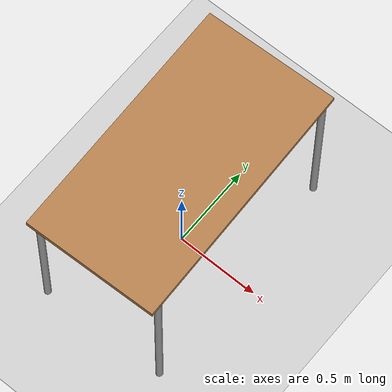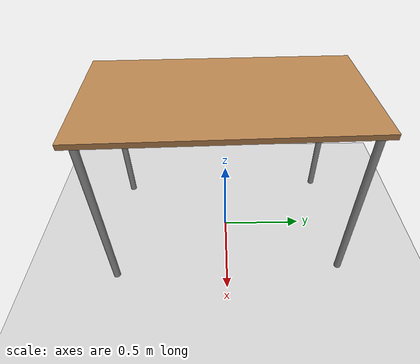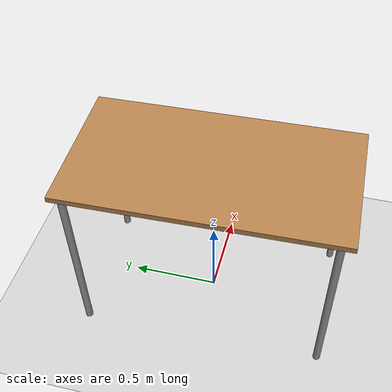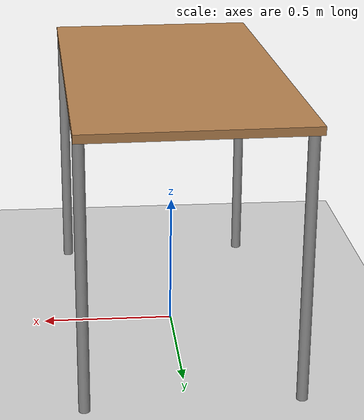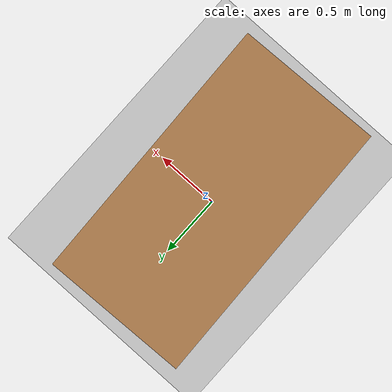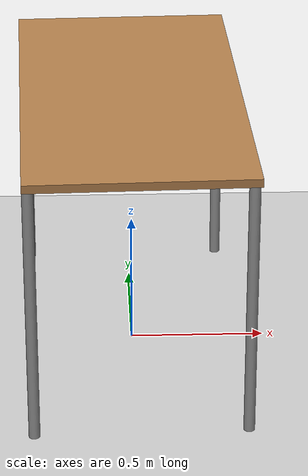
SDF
<sdf version="1.4">
  <world name="papras_system">
    <!-- A global light source -->
    <include>
      <uri>model://sun</uri>
    </include>

    <!-- A ground plane -->
    <include>
      <uri>model://ground_plane</uri>
    </include>

    <!-- A table -->
    <include>
      <uri>model://table</uri>
      <name>table</name>
      <pose>0 0 0 0 0 1.6</pose>
    </include>

    <physics type="ode">
      <real_time_update_rate>1000.0</real_time_update_rate>
      <max_step_size>0.001</max_step_size>
      <real_time_factor>1</real_time_factor>
      <ode>
        <solver>
          <type>quick</type>
          <iters>150</iters>
          <precon_iters>0</precon_iters>
          <sor>1.400000</sor>
          <use_dynamic_moi_rescaling>1</use_dynamic_moi_rescaling>
        </solver>
        <constraints>
          <cfm>0.00001</cfm>
          <erp>0.2</erp>
          <contact_max_correcting_vel>2000.000000</contact_max_correcting_vel>
          <contact_surface_layer>0.01000</contact_surface_layer>
        </constraints>
      </ode>
    </physics>

    <scene>
      <ambient>0.4 0.4 0.4 1</ambient>
      <background>0.7 0.7 0.7 1</background>
      <shadows>true</shadows>
    </scene>

    <gui fullscreen='0'>
      <camera name='user_camera'>
        <pose> 2.0 -2.0 1.2 0.0 0.275643 2.356190 </pose>
        <view_controller>orbit</view_controller>
      </camera>
    </gui>

  </world>
</sdf>

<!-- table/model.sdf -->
<sdf version="1.5">
  <model name="table">
    <static>true</static>
    <link name="link">
      <collision name="surface">
        <pose>0 0 1.0 0 0 0</pose>
        <geometry>
          <box>
            <size>1.5 0.8 0.03</size>
          </box>
        </geometry>
        <surface>
          <friction>
            <ode>
              <mu>0.6</mu>
              <mu2>0.6</mu2>
            </ode>
          </friction>
        </surface>
      </collision>
      <visual name="visual1">
        <pose>0 0 1.0 0 0 0</pose>
        <geometry>
          <box>
            <size>1.5 0.8 0.03</size>
          </box>
        </geometry>
        <material>
          <script>
            <uri>model://media/materials/scripts/gazebo.material</uri>
            <name>Gazebo/Wood</name>
          </script>
        </material>
      </visual>
      <collision name="front_left_leg">
        <pose>0.68 0.38 0.5 0 0 0</pose>
        <geometry>
          <cylinder>
            <radius>0.02</radius>
            <length>1.0</length>
          </cylinder>
        </geometry>
      </collision>
      <visual name="front_left_leg">
        <pose>0.68 0.38 0.5 0 0 0</pose>
        <geometry>
          <cylinder>
            <radius>0.02</radius>
            <length>1.0</length>
          </cylinder>
        </geometry>
        <material>
          <script>
            <uri>model://media/materials/scripts/gazebo.material</uri>
            <name>Gazebo/Grey</name>
          </script>
        </material>
      </visual>
      <collision name="front_right_leg">
        <pose>0.68 -0.38 0.5 0 0 0</pose>
        <geometry>
          <cylinder>
            <radius>0.02</radius>
            <length>1.0</length>
          </cylinder>
        </geometry>
      </collision>
      <visual name="front_right_leg">
        <pose>0.68 -0.38 0.5 0 0 0</pose>
        <geometry>
          <cylinder>
            <radius>0.02</radius>
            <length>1.0</length>
          </cylinder>
        </geometry>
        <material>
          <script>
            <uri>model://media/materials/scripts/gazebo.material</uri>
            <name>Gazebo/Grey</name>
          </script>
        </material>
      </visual>
      <collision name="back_right_leg">
        <pose>-0.68 -0.38 0.5 0 0 0</pose>
        <geometry>
          <cylinder>
            <radius>0.02</radius>
            <length>1.0</length>
          </cylinder>
        </geometry>
      </collision>
      <visual name="back_right_leg">
        <pose>-0.68 -0.38 0.5 0 0 0</pose>
        <geometry>
          <cylinder>
            <radius>0.02</radius>
            <length>1.0</length>
          </cylinder>
        </geometry>
        <material>
          <script>
            <uri>model://media/materials/scripts/gazebo.material</uri>
            <name>Gazebo/Grey</name>
          </script>
        </material>
      </visual>
      <collision name="back_left_leg">
        <pose>-0.68 0.38 0.5 0 0 0</pose>
        <geometry>
          <cylinder>
            <radius>0.02</radius>
            <length>1.0</length>
          </cylinder>
        </geometry>
      </collision>
      <visual name="back_left_leg">
        <pose>-0.68 0.38 0.5 0 0 0</pose>
        <geometry>
          <cylinder>
            <radius>0.02</radius>
            <length>1.0</length>
          </cylinder>
        </geometry>
        <material>
          <script>
            <uri>model://media/materials/scripts/gazebo.material</uri>
            <name>Gazebo/Grey</name>
          </script>
        </material>
      </visual>
    </link>
  </model>
</sdf>
